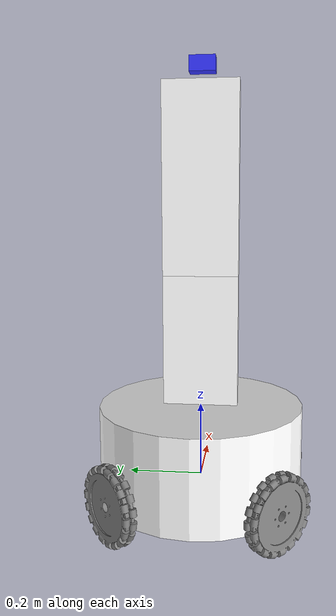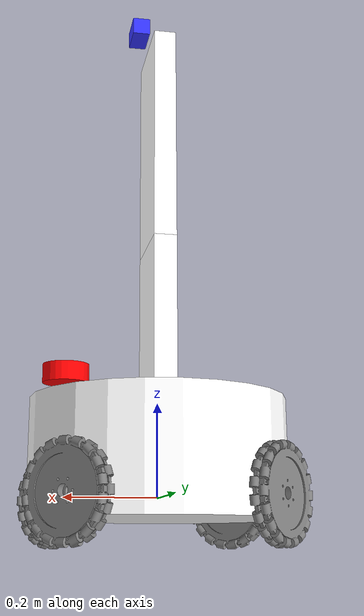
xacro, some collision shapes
<?xml version="1.0"?>
<robot xmlns:xacro="http://www.ros.org/wiki/xacro"  name="robot">

    <xacro:include filename='robot_core.xacro'/>
    <xacro:include filename='robot_wheels.xacro'/>

    <xacro:include filename='lidar.xacro'/>
    <xacro:include filename='depth_camera.xacro'/>

    <xacro:include filename='gazebo_control.xacro'/>

</robot>

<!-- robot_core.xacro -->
<robot xmlns:xacro="http://www.ros.org/wiki/xacro" >

    <xacro:include filename="inertial_macros.xacro"/>

    <material name="white">
        <color rgba="1 1 1 1"/>
    </material>
    <material name="blue">
        <color rgba="0.2 0.2 1 1"/>
    </material>
    <material name="black">
        <color rgba="0 0 0 1"/>
    </material>
    <material name="red">
        <color rgba="1 0 0 1"/>
    </material>
    <material name="grey">
        <color rgba="0.5 0.5 0.5 1"/>
    </material>

    <!--BASE LINK-->
    <link name="base_link">
    </link>

    <!--BASE FOOTPRINT-->
    <joint name="base_footprint_joint" type="fixed">
        <parent link="base_link"/>
        <child link="base_footprint"/>
        <origin xyz="0 0 0" rpy="0 0 0"/>
    </joint>

    <link name="base_footprint">
    </link>

    <!--CHASSI-->
    <joint name="chassi_joint" type="fixed">
        <parent link="base_link"/>
        <child link="chassi_link"/>
        <origin xyz="0 0 0.082" rpy="0 0 0"/>
    </joint>

    <link name="chassi_link">
        <visual>
            <origin xyz="0 0 0"/>
            <geometry>
                <cylinder radius="0.275" length="0.25"/>
            </geometry>
            <material name="white"/>
        </visual>
        <collision>
            <origin xyz="0 0 0"/>
            <geometry>
                <cylinder radius="0.275" length="0.25"/>
            </geometry>
        </collision>
        <xacro:inertial_cylinder mass="1.0" length="0.25" radius="0.275">
            <origin xyz="0 0 0" rpy="0 0 0"/>
        </xacro:inertial_cylinder>
    </link>

    <gazebo reference="chassi_link">
        <material>Gazebo/White</material>
    </gazebo>

    <!--LOWER BODY-->
    <joint name="lower_body_joint" type="fixed">
        <parent link="base_link"/>
        <child link="lower_body_link"/>
        <origin xyz="0 0 0.2" rpy="0 0 0"/>
    </joint>

    <link name="lower_body_link">
        <visual>
            <origin xyz="0 0 0.18" rpy="0 0 ${pi/2}"/>
            <geometry>
                <box size="0.2 0.05 0.35"/>
            </geometry>
            <material name="white"/>
        </visual>
        <collision>
            <origin xyz="0 0 0.18" rpy="0 0 ${pi/2}"/>
            <geometry>
                <box size="0.2 0.05 0.35"/>
            </geometry>
        </collision>
        <xacro:inertial_box mass="0.1" x="0.2" y="0.05" z="0.35">
            <origin xyz="0 0 0.18" rpy="0 0 0"/>
        </xacro:inertial_box>
    </link>

    <gazebo reference="lower_body_link">
        <material>Gazebo/White</material>
    </gazebo>

    <!--UPPER BODY-->
    <joint name="upper_body_joint" type="fixed">
        <parent link="lower_body_link"/>
        <child link="upper_body_link"/>
        <origin xyz="0 0 0.355" rpy="0 0 0"/>
    </joint>

    <link name="upper_body_link">
        <visual>
            <origin xyz="0 0 0.25" rpy="0 0 ${pi/2}"/>
            <geometry>
                <box size="0.2 0.05 0.50"/>
            </geometry>
            <material name="white"/>
        </visual>
        <collision>
            <origin xyz="0 0 0.25" rpy="0 0 ${pi/2}"/>
            <geometry>
                <box size="0.2 0.05 0.50"/>
            </geometry>
        </collision>
        <xacro:inertial_box mass="0.03" x="0.2" y="0.05" z="0.50">
            <origin xyz="0 0 0.25" rpy="0 0 0"/>
        </xacro:inertial_box>
    </link>

    <gazebo reference="upper_body_link">
        <material>Gazebo/White</material>
    </gazebo>

</robot>

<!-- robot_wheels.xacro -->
<robot xmlns:xacro="http://www.ros.org/wiki/xacro">

    <!--WHEELS-->

    <!--LEFT FRONT-->
    <joint name="left_front_joint" type="fixed">
        <parent link="base_link"/>
        <child link="left_front_link"/>
        <origin xyz="0.2 0.2 0" rpy="-${pi/2} 0 -${pi/4}"/>
    </joint>

    <link name="left_front_link">
        <visual>
            <geometry>
                <mesh filename="file://$(find charmie_bot)/description/meshes/omni_wheel.stl" scale="0.001 0.001 0.001"/>
            </geometry>
            <material name="grey"/>
        </visual>
        <collision>
            <geometry>
                <cylinder radius="0.105" length="0.04"/>
            </geometry>
        </collision>
        <xacro:inertial_cylinder mass="0.1" length="0.04" radius="0.105">
            <origin xyz="0 0 0" rpy="0 0 0"/>
        </xacro:inertial_cylinder>
    </link>

    <gazebo reference="left_front_link">
        <material>Gazebo/Grey</material>
        <mu1 value="0.001"/>
        <mu2 value="0.001"/>
    </gazebo>

    <!--LEFT BACK-->
    <joint name="left_back_joint" type="fixed">
        <parent link="base_link"/>
        <child link="left_back_link"/>
        <origin xyz="-0.2 0.2 0" rpy="0 -${pi/2} -${pi/4}"/>
    </joint>

    <link name="left_back_link">
        <visual>
            <geometry>
                <mesh filename="file://$(find charmie_bot)/description/meshes/omni_wheel.stl" scale="0.001 0.001 0.001"/>
            </geometry>
            <material name="grey"/>
        </visual>
        <collision>
            <geometry>
                <cylinder radius="0.105" length="0.04"/>
            </geometry>
        </collision>
        <xacro:inertial_cylinder mass="0.1" length="0.04" radius="0.105">
            <origin xyz="0 0 0" rpy="0 0 0"/>
        </xacro:inertial_cylinder>
    </link>

    <gazebo reference="left_back_link">
        <material>Gazebo/Grey</material>
        <mu1 value="0.001"/>
        <mu2 value="0.001"/>
    </gazebo>

    <!--RIGHT FRONT-->
    <joint name="right_front_joint" type="fixed">
        <parent link="base_link"/>
        <child link="right_front_link"/>
        <origin xyz="0.2 -0.2 0" rpy="0 ${pi/2} -${pi/4}"/>
    </joint>

    <link name="right_front_link">
        <visual>
            <geometry>
                <mesh filename="file://$(find charmie_bot)/description/meshes/omni_wheel.stl" scale="0.001 0.001 0.001"/>
            </geometry>
            <material name="grey"/>
        </visual>
        <collision>
            <geometry>
                <cylinder radius="0.105" length="0.04"/>
            </geometry>
        </collision>
        <xacro:inertial_cylinder mass="0.1" length="0.04" radius="0.105">
            <origin xyz="0 0 0" rpy="0 0 0"/>
        </xacro:inertial_cylinder>
    </link>

    <gazebo reference="right_front_link">
        <material>Gazebo/Grey</material>
        <mu1 value="0.001"/>
        <mu2 value="0.001"/>
    </gazebo>

    <!--RIGHT BACK-->
    <joint name="right_back_joint" type="fixed">
        <parent link="base_link"/>
        <child link="right_back_link"/>
        <origin xyz="-0.2 -0.2 0" rpy="${pi/2} 0 -${pi/4}"/>
    </joint>

    <link name="right_back_link">
        <visual>
            <geometry>
                <mesh filename="file://$(find charmie_bot)/description/meshes/omni_wheel.stl" scale="0.001 0.001 0.001"/>
            </geometry>
            <material name="grey"/>
        </visual>
        <collision>
            <geometry>
                <cylinder radius="0.105" length="0.04"/>
            </geometry>
        </collision>
        <xacro:inertial_cylinder mass="0.1" length="0.04" radius="0.105">
            <origin xyz="0 0 0" rpy="0 0 0"/>
        </xacro:inertial_cylinder>
    </link>

    <gazebo reference="right_back_link">
        <material>Gazebo/Grey</material>
        <mu1 value="0.001"/>
        <mu2 value="0.001"/>
    </gazebo>

</robot>

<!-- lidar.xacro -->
<robot xmlns:xacro="http://www.ros.org/wiki/xacro" >

    <joint name="laser_joint" type="fixed">
        <parent link="chassi_link"/>
        <child link="lidar_frame"/>
        <origin xyz="0.2 0 0.177" rpy="0 0 0"/>
    </joint>

    <link name="lidar_frame">
        <visual>
            <origin xyz="0 0 -0.055" rpy="${pi/2} 0 ${pi}"/>
            <geometry>
                <mesh filename="file://$(find charmie_bot)/description/meshes/lidar.stl" scale="0.001 0.001 0.001"/>
            </geometry>
            <material name="red"/>
        </visual>
        <collision>
            <geometry>
                <cylinder radius="0.05" length="0.04"/>
            </geometry>
        </collision>
        <xacro:inertial_cylinder mass="0.1" length="0.04" radius="0.05">
            <origin xyz="0 0 0" rpy="0 0 0"/>
        </xacro:inertial_cylinder>
    </link>

    <!-- hokuyo -->
    <gazebo reference="lidar_frame">
        <material>Gazebo/Red</material>
        <sensor type="ray" name="head_hokuyo_sensor">
            <pose> 0 0 0.055 0 0 0 </pose>
            <visualize>true</visualize>
            <update_rate>40</update_rate>
            <ray>
                <scan>
                    <horizontal>
                        <samples>681</samples>
                        <min_angle>-2.092387973753402</min_angle>
                        <max_angle>2.092387973753402</max_angle>
                    </horizontal>
                </scan>
                <range>
                    <min>0.2</min>
                    <max>5.6</max>
                </range>
            </ray>
            <plugin name="laser_controller" filename="libgazebo_ros_ray_sensor.so">
                <ros>
                    <argument>~/out:=scan</argument>
                </ros>
                <output_type>sensor_msgs/LaserScan</output_type>
                <frame_name>lidar_frame</frame_name>
            </plugin>
        </sensor>
    </gazebo>

</robot>

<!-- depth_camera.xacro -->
<robot xmlns:xacro="http://www.ros.org/wiki/xacro">

    <joint name="neck_joint" type="fixed">
        <parent link="upper_body_link"/>
        <child link="neck_link"/>
        <origin xyz="0.045 0 0.5" rpy="0 0 0"/>
    </joint>

    <link name="neck_link">
        <xacro:inertial_box mass="0.1" x="0" y="0" z="0">
            <origin xyz="0 0 0" rpy="0 0 0"/>
        </xacro:inertial_box>
    </link>

    <joint name="camera_joint_z" type="revolute">
        <parent link="neck_link"/>
        <child link="camera_link_z"/>
        <origin xyz="0 0 0" rpy="0 0 0"/>
        <axis xyz="0 1 0"/>
        <limit effort="1000.0" lower="0.0" upper="0.548" velocity="0.5"/>
    </joint>

    <link name="camera_link_z">
        <xacro:inertial_box mass="0.1" x="0" y="0" z="0">
            <origin xyz="0 0 0" rpy="0 0 0"/>
        </xacro:inertial_box>
    </link>

    <joint name="camera_joint_y" type="revolute">
        <parent link="camera_link_z"/>
        <child link="camera_link_y"/>
        <origin xyz="0 0 0" rpy="0 0 0"/>
        <axis xyz="0 0 1"/>
        <limit effort="1000.0" lower="-0.548" upper="0.548" velocity="0.5"/>
    </joint>

    <link name="camera_link_y">
        <xacro:inertial_box mass="0.1" x="0" y="0" z="0">
            <origin xyz="0 0 0" rpy="0 0 0"/>
        </xacro:inertial_box>
    </link>

    <joint name="camera_joint" type="fixed">
        <parent link="camera_link_y"/>
        <child link="camera_link"/>
        <origin xyz="0 0 0.05" rpy="0 0 0"/>
    </joint>

    <link name="camera_link">
        <visual>
            <geometry>
                <box size="0.04 0.07 0.04"/>
            </geometry>
            <material name="blue"/>
        </visual>
        <xacro:inertial_box mass="0.1" x="0.04" y="0.07" z="0.04">
            <origin xyz="0 0 0" rpy="0 0 0"/>
        </xacro:inertial_box>
    </link>

    <joint name="camera_optical_joint" type="fixed">
        <parent link="camera_link"/>
        <child link="camera_link_optical"/>
        <origin xyz="0 0 0" rpy="${-pi/2} 0 ${-pi/2}"/>
    </joint>

    <link name="camera_link_optical"></link>

    <gazebo reference="camera_link">
        <material>Gazebo/Blue</material>

        <sensor name="camera" type="depth">
            <pose> 0 0 0 0 0 0 </pose>
            <visualize>true</visualize>
            <update_rate>10</update_rate>
            <camera>
                <horizontal_fov>1.089</horizontal_fov>
                <image>
                    <format>B8G8R8</format>
                    <width>640</width>
                    <height>480</height>
                </image>
                <clip>
                    <near>0.05</near>
                    <far>8.0</far>
                </clip>
            </camera>
            <plugin name="camera_controller" filename="libgazebo_ros_camera.so">
                <frame_name>camera_link_optical</frame_name>
                <min_depth>0.1</min_depth>
                <max_depth>100.0</max_depth>
            </plugin>
        </sensor>
    </gazebo>

</robot>
